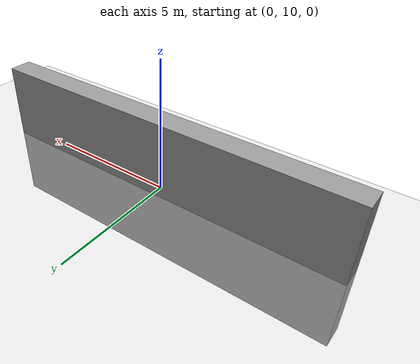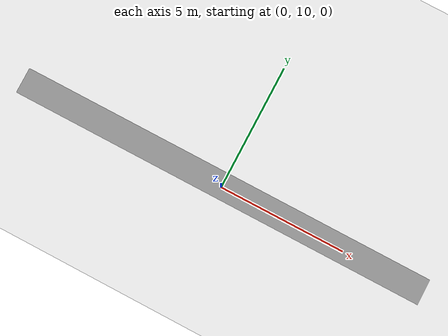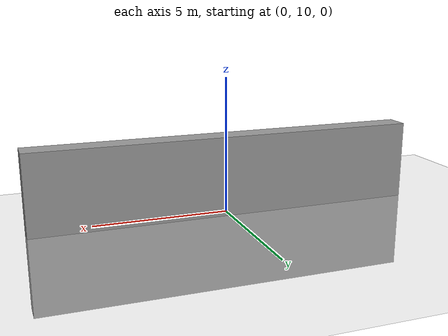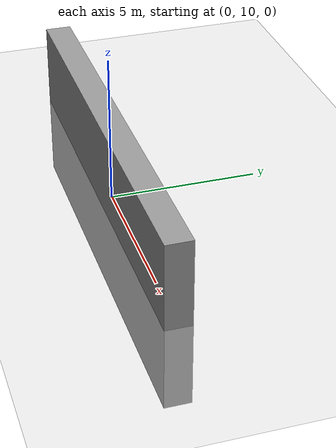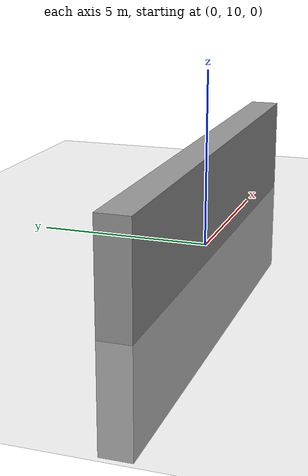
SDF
<?xml version="1.0" ?>
<sdf version="1.5">
  <world name="default">
    <!-- A global light source -->
    <include>
      <uri>model://sun</uri>
    </include>
    <!-- A ground plane -->
    <include>
      <uri>model://ground_plane</uri>
    </include>
    <include>
		<uri>model://Wall</uri>
		<pose>0 10 0 0 0 0</pose>
	</include>
  </world>
</sdf>

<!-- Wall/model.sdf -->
<sdf version='1.6'>
  <model name='Wall'>
    <link name='link_0'>
      <inertial>
        <mass>150236</mass>
        <inertia>
          <ixx>439522</ixx>
          <ixy>0</ixy>
          <ixz>0</ixz>
          <iyy>3.06169e+06</iyy>
          <iyz>0</iyz>
          <izz>2.64175e+06</izz>
        </inertia>
        <pose frame=''>0 0 0 0 -0 0</pose>
      </inertial>
      <pose frame=''>0 0 0 0 -0 0</pose>
      <gravity>0</gravity>
      <self_collide>0</self_collide>
      <kinematic>0</kinematic>
      <enable_wind>0</enable_wind>
      <visual name='visual'>
        <pose frame=''>0 0 0 0 -0 0</pose>
        <geometry>
          <box>
            <size>14.4992 0.884309 5.85872</size>
          </box>
        </geometry>
        <material>
          <lighting>1</lighting>
          <script>
            <uri>file://media/materials/scripts/gazebo.material</uri>
            <name>Gazebo/Grey</name>
          </script>
          <shader type='pixel'>
            <normal_map>__default__</normal_map>
          </shader>
        </material>
        <transparency>0</transparency>
        <cast_shadows>1</cast_shadows>
      </visual>
      <collision name='collision_1'>
        <laser_retro>0</laser_retro>
        <max_contacts>10</max_contacts>
        <pose frame=''>0 0 0 0 -0 0</pose>
        <geometry>
          <box>
            <size>14.4992 0.884309 5.85872</size>
          </box>
        </geometry>
        <surface>
          <friction>
            <ode>
              <mu>1</mu>
              <mu2>1</mu2>
              <fdir1>0 0 0</fdir1>
              <slip1>0</slip1>
              <slip2>0</slip2>
            </ode>
            <torsional>
              <coefficient>1</coefficient>
              <patch_radius>0</patch_radius>
              <surface_radius>0</surface_radius>
              <use_patch_radius>1</use_patch_radius>
              <ode>
                <slip>0</slip>
              </ode>
            </torsional>
          </friction>
          <bounce>
            <restitution_coefficient>0</restitution_coefficient>
            <threshold>1e+06</threshold>
          </bounce>
          <contact>
            <collide_without_contact>0</collide_without_contact>
            <collide_without_contact_bitmask>1</collide_without_contact_bitmask>
            <collide_bitmask>1</collide_bitmask>
            <ode>
              <soft_cfm>0</soft_cfm>
              <soft_erp>0.2</soft_erp>
              <kp>1e+13</kp>
              <kd>1</kd>
              <max_vel>0.01</max_vel>
              <min_depth>0</min_depth>
            </ode>
            <bullet>
              <split_impulse>1</split_impulse>
              <split_impulse_penetration_threshold>-0.01</split_impulse_penetration_threshold>
              <soft_cfm>0</soft_cfm>
              <soft_erp>0.2</soft_erp>
              <kp>1e+13</kp>
              <kd>1</kd>
            </bullet>
          </contact>
        </surface>
      </collision>
      <collision name='collision_2'>
        <laser_retro>0</laser_retro>
        <max_contacts>10</max_contacts>
        <pose frame=''>0 0 0 0 -0 0</pose>
        <geometry>
          <box>
            <size>14.4992 0.884309 5.85872</size>
          </box>
        </geometry>
        <surface>
          <friction>
            <ode>
              <mu>1</mu>
              <mu2>1</mu2>
              <fdir1>0 0 0</fdir1>
              <slip1>0</slip1>
              <slip2>0</slip2>
            </ode>
            <torsional>
              <coefficient>1</coefficient>
              <patch_radius>0</patch_radius>
              <surface_radius>0</surface_radius>
              <use_patch_radius>1</use_patch_radius>
              <ode>
                <slip>0</slip>
              </ode>
            </torsional>
          </friction>
          <bounce>
            <restitution_coefficient>0</restitution_coefficient>
            <threshold>1e+06</threshold>
          </bounce>
          <contact>
            <collide_without_contact>0</collide_without_contact>
            <collide_without_contact_bitmask>1</collide_without_contact_bitmask>
            <collide_bitmask>1</collide_bitmask>
            <ode>
              <soft_cfm>0</soft_cfm>
              <soft_erp>0.2</soft_erp>
              <kp>1e+13</kp>
              <kd>1</kd>
              <max_vel>0.01</max_vel>
              <min_depth>0</min_depth>
            </ode>
            <bullet>
              <split_impulse>1</split_impulse>
              <split_impulse_penetration_threshold>-0.01</split_impulse_penetration_threshold>
              <soft_cfm>0</soft_cfm>
              <soft_erp>0.2</soft_erp>
              <kp>1e+13</kp>
              <kd>1</kd>
            </bullet>
          </contact>
        </surface>
      </collision>
      <collision name='collision'>
        <laser_retro>0</laser_retro>
        <max_contacts>10</max_contacts>
        <pose frame=''>0 0 0 0 -0 0</pose>
        <geometry>
          <box>
            <size>14.4992 0.884309 5.85872</size>
          </box>
        </geometry>
        <surface>
          <friction>
            <ode>
              <mu>1</mu>
              <mu2>1</mu2>
              <fdir1>0 0 0</fdir1>
              <slip1>0</slip1>
              <slip2>0</slip2>
            </ode>
            <torsional>
              <coefficient>1</coefficient>
              <patch_radius>0</patch_radius>
              <surface_radius>0</surface_radius>
              <use_patch_radius>1</use_patch_radius>
              <ode>
                <slip>0</slip>
              </ode>
            </torsional>
          </friction>
          <bounce>
            <restitution_coefficient>0</restitution_coefficient>
            <threshold>1e+06</threshold>
          </bounce>
          <contact>
            <collide_without_contact>0</collide_without_contact>
            <collide_without_contact_bitmask>1</collide_without_contact_bitmask>
            <collide_bitmask>1</collide_bitmask>
            <ode>
              <soft_cfm>0</soft_cfm>
              <soft_erp>0.2</soft_erp>
              <kp>1e+13</kp>
              <kd>1</kd>
              <max_vel>0.01</max_vel>
              <min_depth>0</min_depth>
            </ode>
            <bullet>
              <split_impulse>1</split_impulse>
              <split_impulse_penetration_threshold>-0.01</split_impulse_penetration_threshold>
              <soft_cfm>0</soft_cfm>
              <soft_erp>0.2</soft_erp>
              <kp>1e+13</kp>
              <kd>1</kd>
            </bullet>
          </contact>
        </surface>
      </collision>
    </link>
    <static>0</static>
    <allow_auto_disable>1</allow_auto_disable>
  </model>
</sdf>
